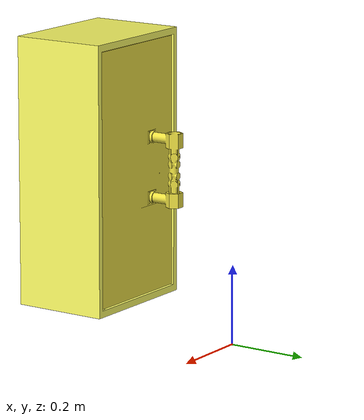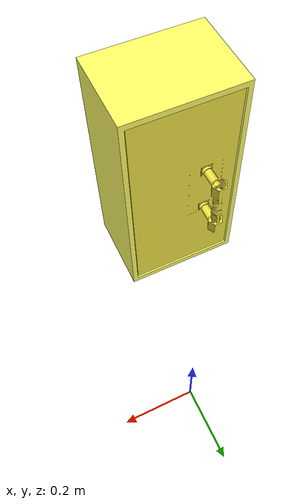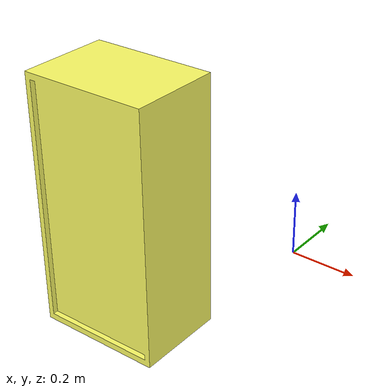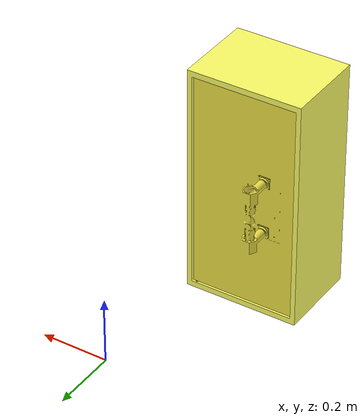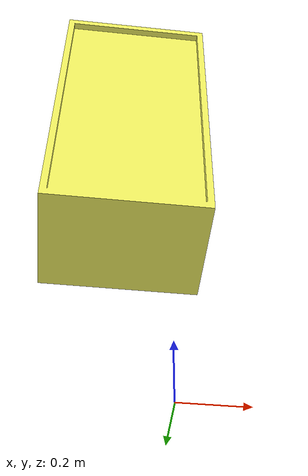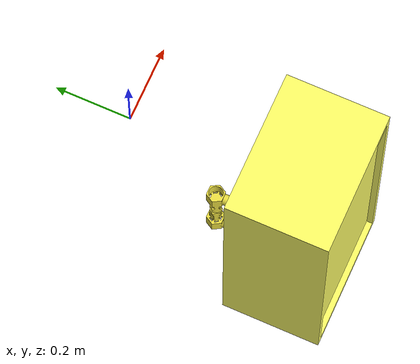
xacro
<?xml version="1.0"?>
<robot xmlns:xi="http://www.w3.org/2001/XInclude"
	xmlns:gazebo="http://playerstage.sourceforge.net/gazebo/xmlschema/#gz"
    xmlns:model="http://playerstage.sourceforge.net/gazebo/xmlschema/#model"
	xmlns:sensor="http://playerstage.sourceforge.net/gazebo/xmlschema/#sensor"
	xmlns:body="http://playerstage.sourceforge.net/gazebo/xmlschema/#body"
    xmlns:geom="http://playerstage.sourceforge.net/gazebo/xmlschema/#geom"
    xmlns:joint="http://playerstage.sourceforge.net/gazebo/xmlschema/#joint"
	xmlns:controller="http://playerstage.sourceforge.net/gazebo/xmlschema/#controller"
	xmlns:interface="http://playerstage.sourceforge.net/gazebo/xmlschema/#interface"
	xmlns:rendering="http://playerstage.sourceforge.net/gazebo/xmlschema/#rendering"
    xmlns:renderable="http://playerstage.sourceforge.net/gazebo/xmlschema/#renderable"
    xmlns:physics="http://playerstage.sourceforge.net/gazebo/xmlschema/#physics"
	xmlns:xacro="http://www.ros.org/wiki/xacro" name="door_model">
  <xacro:include filename="$(find kinova_description)/urdf/door.xacro"/>

  <link name="root" />

  <!-- for gazebo -->
  <link name="world"/>

  <door parent="world"/>
  <joint name="connect_root_and_world" type="fixed">
    <child link="root" />
    <parent link="world" />
    <origin xyz="-0.2 0.5 0" rpy="0 0 0" />
  </joint>
</robot>

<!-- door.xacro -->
<root xmlns:xi="http://www.w3.org/2001/XInclude"
	xmlns:gazebo="http://playerstage.sourceforge.net/gazebo/xmlschema/#gz"
    xmlns:model="http://playerstage.sourceforge.net/gazebo/xmlschema/#model"
	xmlns:sensor="http://playerstage.sourceforge.net/gazebo/xmlschema/#sensor"
	xmlns:body="http://playerstage.sourceforge.net/gazebo/xmlschema/#body"
    xmlns:geom="http://playerstage.sourceforge.net/gazebo/xmlschema/#geom"
    xmlns:joint="http://playerstage.sourceforge.net/gazebo/xmlschema/#joint"
	xmlns:controller="http://playerstage.sourceforge.net/gazebo/xmlschema/#controller"
	xmlns:interface="http://playerstage.sourceforge.net/gazebo/xmlschema/#interface"
	xmlns:rendering="http://playerstage.sourceforge.net/gazebo/xmlschema/#rendering"
    xmlns:renderable="http://playerstage.sourceforge.net/gazebo/xmlschema/#renderable"
    xmlns:physics="http://playerstage.sourceforge.net/gazebo/xmlschema/#physics"
	xmlns:xacro="http://www.ros.org/wiki/xacro">
  <xacro:include filename="$(find kinova_description)/urdf/door.gazebo" />
  <xacro:macro name="door" params="parent">

  <link name="cabinet">
  <origin rpy="0 0 0" xyz="0 0 0"/>
    <visual>
      <origin rpy="0 0 0" xyz="0 0 0"/>
      <geometry>
        <mesh filename="file://$(find kinova_description)/meshes/cabinet.stl" scale="1 1 1"/>
      </geometry>
       <material name="yellow">
        <color rgba="1 1 0.4 1"/>
      </material>
    </visual>
    <collision>
      <origin rpy="0 0 0" xyz="0 0 0"/>
      <geometry>
	 	<mesh filename="file://$(find kinova_description)/meshes/cabinet.stl" scale="1 1 1"/>
      </geometry>
    </collision>
    <inertial>
      <mass value="0.5"/>
      <inertia ixx="1.0" ixy="0.0" ixz="0.0" iyy="1.0" iyz="0.0" izz="1.0"/>
    </inertial>
  </link>

  <joint name="hinge" type="revolute">
    <axis xyz="0 0 1"/>
    <limit effort="1000.0" lower="-3.14" upper="3.14" velocity="0.5"/>
    <origin rpy="0 0 0" xyz="-0.0285 -0.010 0.02"/>
    <parent link="cabinet"/>
    <child link="door_1"/>
  </joint>

  <link name="door_1">
    <visual>
      <origin rpy="0 0 0" xyz="0 0 0"/>
      <geometry>
        <mesh filename="file://$(find kinova_description)/meshes/door.stl" scale="1 1 1"/>
      </geometry>

    </visual>
    <collision>
      <origin rpy="0 0 0" xyz="0 0 0"/>
      <geometry>
	 	<mesh filename="file://$(find kinova_description)/meshes/door.stl" scale="1 1 1"/>
      </geometry>
    </collision>
    <inertial>
      <mass value="0.5"/>
      <inertia ixx="1.0" ixy="0.0" ixz="0.0" iyy="1.0" iyz="0.0" izz="1.0"/>
    </inertial>
  </link>

  <joint name="connect_cabinet_to_parent" type="fixed">
    <child link="cabinet" />
    <parent link="${parent}"/>

    <origin xyz="0 -0.4 0" rpy="0 0 0" />
  </joint>

  <transmission name="tran1">
        <type>transmission_interface/SimpleTransmission</type>
        <joint name="hinge">
          <hardwareInterface>hardware_interface/EffortJointInterface</hardwareInterface>
        </joint>
        <actuator name="motor1">
          <hardwareInterface>hardware_interface/EffortJointInterface</hardwareInterface>
          <mechanicalReduction>1</mechanicalReduction>
        </actuator>
    </transmission>

</xacro:macro>
</root>
